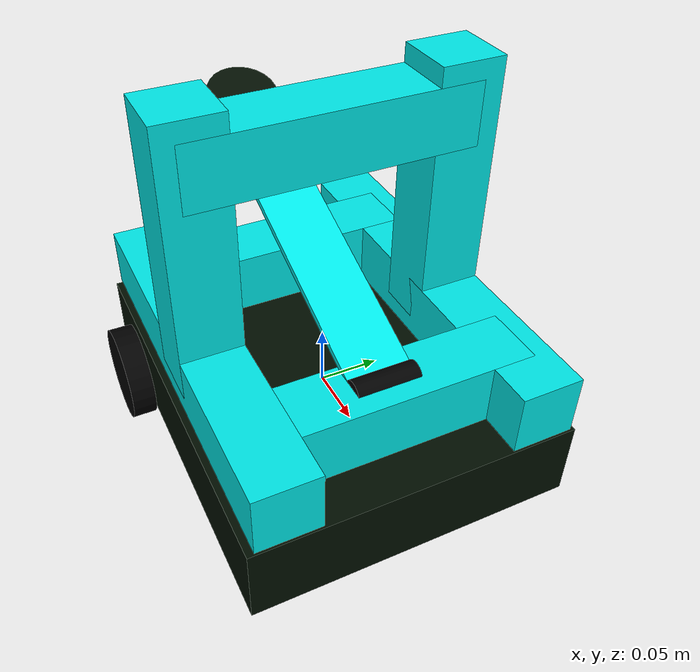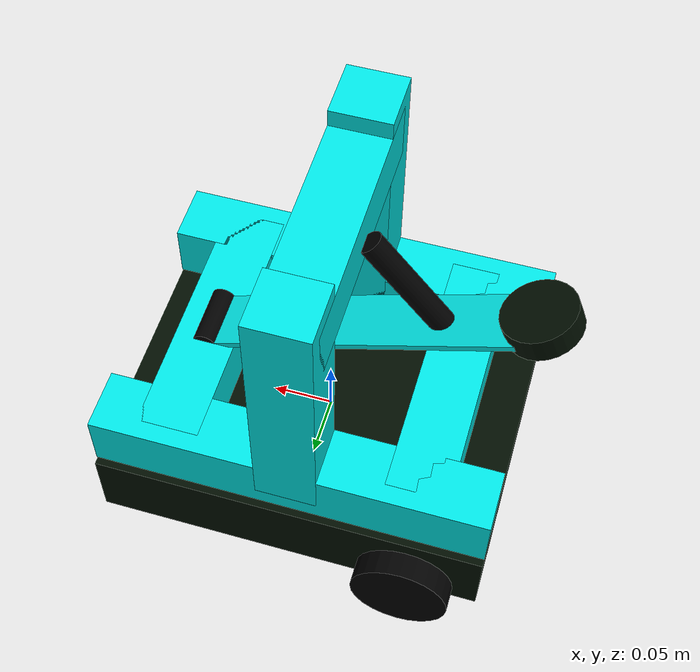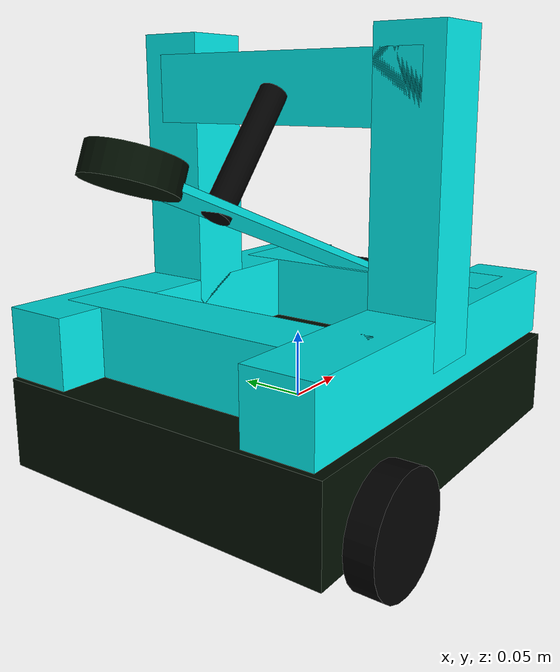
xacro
<robot xmlns:xacro="http://www.ros.org/wiki/xacro" name="catapulta">
  <material name="green">
    <color rgba="0 0.4 0.2 1"/>
  </material>
  <material name="dark_green">
    <color rgba="0 0.05 0 1"/>
  </material>
  <material name="light_green">
    <color rgba="0.9 1.0 0.9 1"/>
  </material>
  <material name="black">
    <color rgba="0 0 0 1"/>
  </material>
  <material name="Cyan1">
    <color rgba="0 0.9 0.9 1.0"/>
  </material>

  <xacro:property name="h" value="0.32"/>
  <xacro:property name="w" value="0.26"/>
  <xacro:property name="d" value="0.065"/>

  <xacro:property name="basis_fixed_size_1" value="0.32"/>
  <xacro:property name="basis_fixed_size_2" value="0.05"/>
  <xacro:property name="basis_fixed_size_3" value="0.22"/>

 	<link name="base_link">
		<visual>
		    <origin xyz="0 0 0" rpy="0 0 0"/>
			<geometry>
				<box size="${h} ${w} ${d}"/>
			</geometry>
			<material name="dark_green"/>
		</visual>
    <collision>
      <geometry>
        <box size="${h} ${w} ${d}"/>
      </geometry>
    </collision>
    <inertial>
      <mass value="5"/>
      <inertia ixx="${1 / 12 * 5 * (h * w + d * d)}"
               ixy="0.0"
               ixz="0.0"
               iyy="${1 / 12 * 5 * (h * h + d * d)}"
               iyz="0.0"
               izz="${1 / 12 * 5 * (w * w + h * h)}"/>
    </inertial>
	</link>

  <xacro:macro name="make_parallelepiped" params="name h w d color mass">
		<link name="${name}">
			<visual>
				<geometry>
					<box size="${h} ${w} ${d}"/>
				</geometry>
				<material name="${color}"/>
			</visual>
			<collision>
				<geometry>
					<box size="${h} ${w} ${d}"/>
				</geometry>
			</collision>
			<inertial>
				<mass value="${mass}"/>
        <inertia ixx="${mass / 12 * (w * w + d * d)}"
          ixy="0.0"
          ixz="0.0"
          iyy="${1 / 12 * mass * (h * h + d * d)}"
          iyz="0.0"
          izz="${1 / 12 * mass * (w * w + h * h)}"/>
			</inertial>
		</link>
	</xacro:macro>

  <xacro:macro name="make_cylinder" params="name radius length color mass">
		<link name="${name}">
			<visual>
				<geometry>
					<cylinder radius="${radius}" length="${length}"/>
				</geometry>
				<material name="${color}"/>
			</visual>
			<collision>
				<geometry>
					<cylinder radius="${radius}" length="${length}"/>
				</geometry>
			</collision>
			<inertial>
				<mass value="${mass}"/>
				<inertia ixx="${(mass/12)*((3*radius*radius)+(length*length))}"
						 ixy="0"
						 ixz="0"
						 iyy="${(mass/12)*((3*radius*radius)+(length*length))}"
						 iyz="0"
						 izz="${(mass/2)*(radius*radius)}"/>
			</inertial>
		</link>
	</xacro:macro>

  <xacro:macro name="joint" params="parent child type xyz rpy">
		<joint name="${parent}_${child}_joint" type="${type}">
			<parent link="${parent}"/>
			<child link="${child}"/>
			<origin xyz="${xyz}" rpy="${rpy}"/>
		</joint>
	</xacro:macro>

	<xacro:macro name="drive_joint" params="parent child type xyz rpy axis">
		<joint name="${parent}_${child}_joint" type="${type}">
			<parent link="${parent}_link"/>
			<child link="${child}_link"/>
			<origin xyz="${xyz}" rpy="${rpy}"/>
			<axis xyz="${axis}"/>
		</joint>
	</xacro:macro>

  <xacro:make_parallelepiped name="basis1"
            h="${h}"
            w="${basis_fixed_size_2}"
            d="${basis_fixed_size_2}"
            color="Cyan1"
            mass="0.5" />

  <xacro:make_parallelepiped name="basis2"
            h="${basis_fixed_size_2}"
            w="${basis_fixed_size_2}"
            d="${basis_fixed_size_3}"
            color="Cyan1"
            mass="0.5" />

  <xacro:make_parallelepiped name="basis3"
            h="${h}"
            w="${basis_fixed_size_2}"
            d="${basis_fixed_size_2}"
            color="Cyan1"
            mass="0.5" />

  <xacro:make_parallelepiped name="basis4"
            h="${basis_fixed_size_2}"
            w="${basis_fixed_size_2}"
            d="${basis_fixed_size_3}"
            color="Cyan1"
            mass="0.5" />

  <xacro:make_parallelepiped name="basis5"
            h="${basis_fixed_size_2}"
            w="${basis_fixed_size_3}"
            d="${basis_fixed_size_2}"
            color="Cyan1"
            mass="0.5" />

  <xacro:make_parallelepiped name="basis6"
            h="${basis_fixed_size_2}"
            w="${basis_fixed_size_3}"
            d="${basis_fixed_size_2}"
            color="Cyan1"
            mass="0.5" />

  <xacro:make_parallelepiped name="basis7"
            h="${basis_fixed_size_2}"
            w="${basis_fixed_size_3}"
            d="${basis_fixed_size_2}"
            color="Cyan1"
            mass="0.5" />

  <xacro:make_parallelepiped name="basis8"
            h="${basis_fixed_size_2}"
            w="0.27"
            d="0.005"
            color="Cyan1"
            mass="0.5" />

  <xacro:make_cylinder name="basis9"
            radius="0.03" length="0.02"
            color="dark_green"
            mass="0.1" />

  <xacro:make_cylinder name="basis10"
            radius="0.01" length="0.1"
            color="black"
            mass="0.1" />

  <xacro:make_cylinder name="basis11"
            radius="0.01" length="0.05"
            color="black"
            mass="0.1" />

	<xacro:make_cylinder name="right_drive_link"
						 radius="0.04" length="0.02"
						 color="black"
						 mass="0.1" />

	<xacro:make_cylinder name="left_drive_link"
						 radius="0.04" length="0.02"
						 color="black"
						 mass="0.1" />

  <link name="front_driven_link">
    <visual>
      <geometry>
        <sphere radius="0.037"/>
      </geometry>
      <material name="black"/>
    </visual>
    <collision>
      <geometry>
        <sphere radius="0.037"/>
      </geometry>
    </collision>
    <inertial>
      <mass value="0.1"/>
      <inertia ixx="${2 / 10 * 0.037 * 0.037}"
               ixy="0.0"
               ixz="0.0"
               iyy="${2 / 10 * 0.037 * 0.037}"
               iyz="0.0"
               izz="${2 / 10 * 0.037 * 0.037}"/>
    </inertial>
  </link>

  <xacro:joint parent="base_link" child="basis1"
      type="fixed"
      xyz="0 0.1 0.06" rpy="0 0 0"/>

  <xacro:joint parent="base_link" child="basis2"
      type="fixed"
      xyz="0 -0.1 0.16" rpy="0 0 0"/>

  <xacro:joint parent="base_link" child="basis3"
      type="fixed"
      xyz="0 -0.1 0.06" rpy="0 0 0"/>

  <xacro:joint parent="base_link" child="basis4"
      type="fixed"
      xyz="0 0.1 0.16" rpy="0 0 0"/>

  <xacro:joint parent="base_link" child="basis5"
      type="fixed"
      xyz="0.1 0 0.06" rpy="0 0 0"/>

  <xacro:joint parent="base_link" child="basis6"
      type="fixed"
      xyz="-0.1 0 0.06" rpy="0 0 0"/>

  <xacro:joint parent="base_link" child="basis7"
      type="fixed"
      xyz="-0 0 0.23" rpy="0 0 0"/>

  <xacro:joint parent="base_link" child="basis8"
      type="fixed"
      xyz="-0.03 0 0.13" rpy="0.37 0 1.57"/>

  <xacro:joint parent="base_link" child="basis9"
      type="fixed"
      xyz="-0.16 0 0.184" rpy="0.37 0 1.57"/>

  <xacro:joint parent="base_link" child="basis10"
      type="fixed"
      xyz="-0.06 0 0.188" rpy="0.67 0 1.57"/>

  <xacro:joint parent="base_link" child="basis11"
      type="fixed"
      xyz="0.1 0 0.081" rpy="1.57 0 0"/>

  <joint name="right_drive_joint" type="continuous">
    <parent link="base_link"/>
    <child link="right_drive_link"/>
    <origin xyz="-0.1 -0.14 -0.02" rpy="1.57 0 0"/>
    <axis xyz="0 0 -2"/>
  </joint>

  <joint name="left_drive_joint" type="continuous">
    <parent link="base_link"/>
    <child link="left_drive_link"/>
    <origin xyz="-0.1 0.14 -0.02" rpy="1.57 0 0"/>
    <axis xyz="0 0 -2"/>
  </joint>

  <joint name="base_driven_joint" type="fixed">
    <parent link="base_link"/>
    <child link="front_driven_link"/>
    <origin xyz="0.1 0 -0.02" rpy="0 0 0"/>
  </joint>

  <gazebo reference="front_driven_link">
    <mu1 value="0.001"/>
    <mu2 value="0.001"/>
  </gazebo>

  <gazebo>
    <plugin
      filename="gz-sim-joint-state-publisher-system"
      name="gz::sim::systems::JointStatePublisher">
    </plugin>

    <plugin
      filename="gz-sim-diff-drive-system"
      name="gz::sim::systems::DiffDrive">
      <left_joint>left_drive_joint</left_joint>
      <right_joint>right_drive_joint</right_joint>
      <child_frame_id>robot/base_link</child_frame_id>
      <wheel_separation>0.26</wheel_separation>
      <wheel_radius>0.04</wheel_radius>
      <odom_publish_frequency>64</odom_publish_frequency>
    </plugin>
  </gazebo>

</robot>
